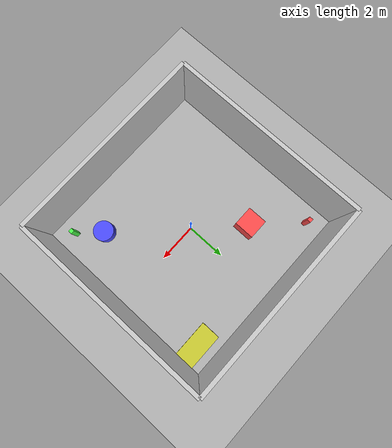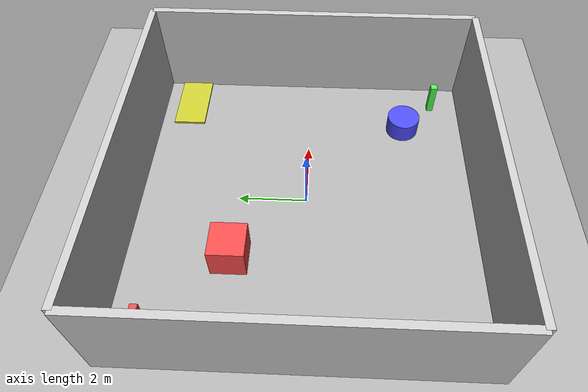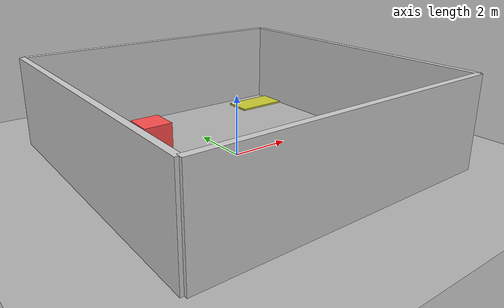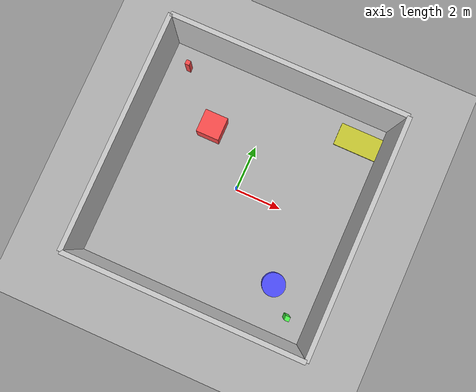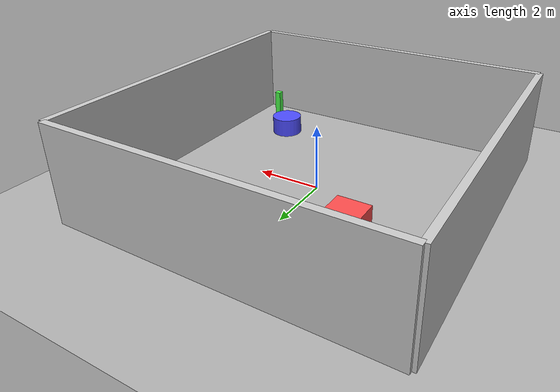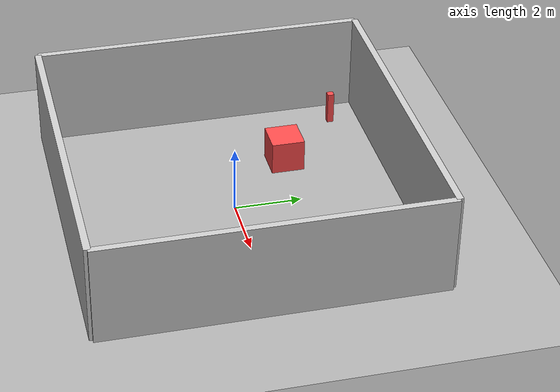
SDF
<?xml version="1.0" ?>
<sdf version="1.7">
  <world name="simple_robot_world">
    <!-- Physics Engine Configuration -->
    <physics type="ode">
      <max_step_size>0.001</max_step_size>
      <real_time_factor>1</real_time_factor>
      <real_time_update_rate>1000</real_time_update_rate>
      <gravity>0 0 -9.8</gravity>
      <ode>
        <solver>
          <type>quick</type>
          <iters>10</iters>
          <sor>1.3</sor>
        </solver>
        <constraints>
          <cfm>0.0</cfm>
          <erp>0.2</erp>
          <contact_max_correcting_vel>100</contact_max_correcting_vel>
          <contact_surface_layer>0.001</contact_surface_layer>
        </constraints>
      </ode>
    </physics>

    <!-- Lighting -->
    <light name="sun" type="directional">
      <cast_shadows>true</cast_shadows>
      <pose>0 0 10 0 0 0</pose>
      <diffuse>0.8 0.8 0.8 1</diffuse>
      <specular>0.2 0.2 0.2 1</specular>
      <attenuation>
        <range>1000</range>
        <constant>0.9</constant>
        <linear>0.01</linear>
        <quadratic>0.001</quadratic>
      </attenuation>
      <direction>-0.3 0.0 -1.0</direction>
    </light>

    <!-- Ground Plane -->
    <model name="ground_plane">
      <static>true</static>
      <link name="link">
        <collision name="collision">
          <geometry>
            <plane>
              <normal>0 0 1</normal>
              <size>100 100</size>
            </plane>
          </geometry>
        </collision>
        <visual name="visual">
          <geometry>
            <plane>
              <normal>0 0 1</normal>
              <size>100 100</size>
            </plane>
          </geometry>
          <material>
            <ambient>0.3 0.3 0.3 1</ambient>
            <diffuse>0.7 0.7 0.7 1</diffuse>
            <specular>0.0 0.0 0.0 1</specular>
          </material>
        </visual>
      </link>
    </model>

    <!-- Room with walls -->
    <model name="room">
      <static>true</static>
      <!-- North wall -->
      <link name="wall_north">
        <pose>0 5 1.5 0 0 0</pose>
        <collision name="collision_north">
          <geometry><box><size>10 0.2 3</size></box></geometry>
        </collision>
        <visual name="visual_north">
          <geometry><box><size>10 0.2 3</size></box></geometry>
          <material>
            <ambient>0.5 0.5 0.5 1</ambient>
            <diffuse>0.8 0.8 0.8 1</diffuse>
          </material>
        </visual>
      </link>
      <!-- South wall -->
      <link name="wall_south">
        <pose>0 -5 1.5 0 0 0</pose>
        <collision name="collision_south">
          <geometry><box><size>10 0.2 3</size></box></geometry>
        </collision>
        <visual name="visual_south">
          <geometry><box><size>10 0.2 3</size></box></geometry>
          <material>
            <ambient>0.5 0.5 0.5 1</ambient>
            <diffuse>0.8 0.8 0.8 1</diffuse>
          </material>
        </visual>
      </link>
      <!-- East wall -->
      <link name="wall_east">
        <pose>5 0 1.5 0 0 0</pose>
        <collision name="collision_east">
          <geometry><box><size>0.2 10 3</size></box></geometry>
        </collision>
        <visual name="visual_east">
          <geometry><box><size>0.2 10 3</size></box></geometry>
          <material>
            <ambient>0.5 0.5 0.5 1</ambient>
            <diffuse>0.8 0.8 0.8 1</diffuse>
          </material>
        </visual>
      </link>
      <!-- West wall -->
      <link name="wall_west">
        <pose>-5 0 1.5 0 0 0</pose>
        <collision name="collision_west">
          <geometry><box><size>0.2 10 3</size></box></geometry>
        </collision>
        <visual name="visual_west">
          <geometry><box><size>0.2 10 3</size></box></geometry>
          <material>
            <ambient>0.5 0.5 0.5 1</ambient>
            <diffuse>0.8 0.8 0.8 1</diffuse>
          </material>
        </visual>
      </link>
    </model>

    <!-- Obstacles -->
    <model name="obstacle1">
      <pose>-2 2 0.5 0 0 0</pose>
      <link name="link">
        <inertial>
          <mass>5.0</mass>
          <inertia>
            <ixx>0.416</ixx> <ixy>0</ixy> <ixz>0</ixz>
            <iyy>0.416</iyy> <iyz>0</iyz> <izz>0.833</izz>
          </inertia>
        </inertial>
        <collision name="collision">
          <geometry><box><size>1 1 1</size></box></geometry>
        </collision>
        <visual name="visual">
          <geometry><box><size>1 1 1</size></box></geometry>
          <material>
            <ambient>0.8 0.2 0.2 1</ambient>
            <diffuse>1.0 0.3 0.3 1</diffuse>
          </material>
        </visual>
      </link>
    </model>

    <model name="obstacle2">
      <pose>3 -3 0.3 0 0 0</pose>
      <link name="link">
        <inertial>
          <mass>3.0</mass>
          <inertia>
            <ixx>0.1</ixx> <ixy>0</ixy> <ixz>0</ixz>
            <iyy>0.1</iyy> <iyz>0</iyz> <izz>0.1</izz>
          </inertia>
        </inertial>
        <collision name="collision">
          <geometry><cylinder><radius>0.5</radius><length>0.6</length></cylinder></geometry>
        </collision>
        <visual name="visual">
          <geometry><cylinder><radius>0.5</radius><length>0.6</length></cylinder></geometry>
          <material>
            <ambient>0.2 0.2 0.8 1</ambient>
            <diffuse>0.3 0.3 1.0 1</diffuse>
          </material>
        </visual>
      </link>
    </model>

    <!-- Example robot spawn location -->
    <model name="example_robot" type="model" placeholder="true">
      <!-- This is a placeholder for where a robot would be spawned -->
      <!-- Actual robot models would be loaded separately and spawned via ROS -->
      <pose>0 0 0.5 0 0 0</pose>
    </model>

    <!-- Optional: Add some landmarks for navigation -->
    <model name="landmark_red">
      <pose>-4 4 0.5 0 0 0</pose>
      <link name="link">
        <collision name="collision">
          <geometry><box><size>0.2 0.2 1</size></box></geometry>
        </collision>
        <visual name="visual">
          <geometry><box><size>0.2 0.2 1</size></box></geometry>
          <material>
            <ambient>0.8 0.2 0.2 1</ambient>
            <diffuse>1.0 0.3 0.3 1</diffuse>
          </material>
        </visual>
      </link>
    </model>

    <model name="landmark_green">
      <pose>4 -4 0.5 0 0 0</pose>
      <link name="link">
        <collision name="collision">
          <geometry><box><size>0.2 0.2 1</size></box></geometry>
        </collision>
        <visual name="visual">
          <geometry><box><size>0.2 0.2 1</size></box></geometry>
          <material>
            <ambient>0.2 0.8 0.2 1</ambient>
            <diffuse>0.3 1.0 0.3 1</diffuse>
          </material>
        </visual>
      </link>
    </model>

    <!-- Optional: Add a charging station -->
    <model name="charging_station">
      <pose>4 4 0 0 0 0</pose>
      <static>true</static>
      <link name="link">
        <collision name="collision">
          <geometry><box><size>2 1 0.1</size></box></geometry>
        </collision>
        <visual name="visual">
          <geometry><box><size>2 1 0.1</size></box></geometry>
          <material>
            <ambient>0.5 0.5 0.1 1</ambient>
            <diffuse>0.8 0.8 0.2 1</diffuse>
          </material>
        </visual>
      </link>
    </model>

  </world>
</sdf>
